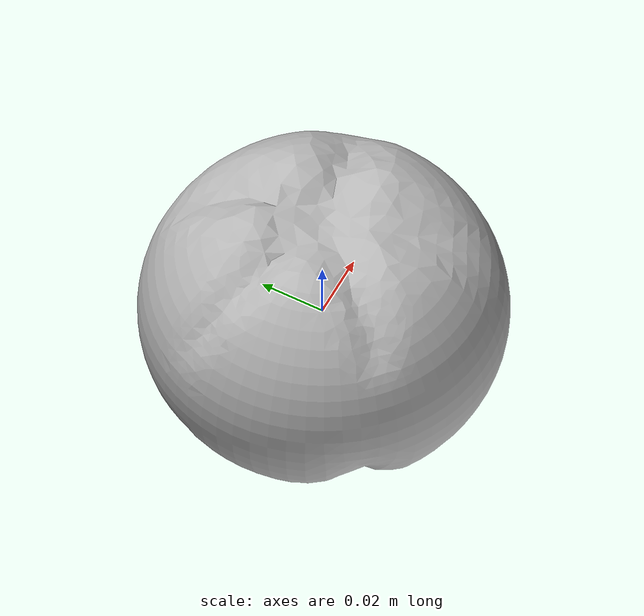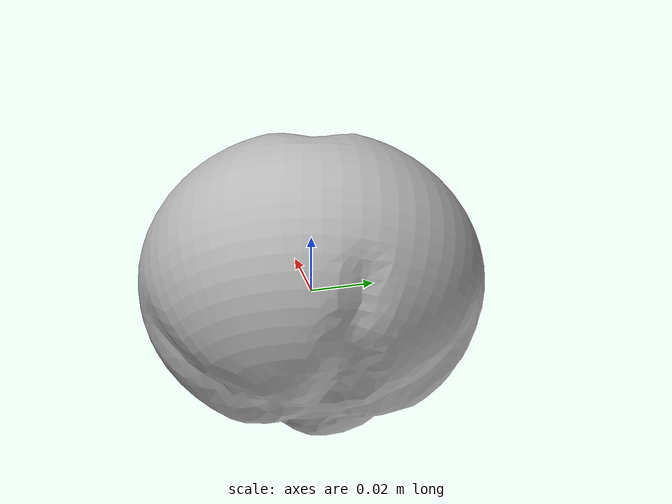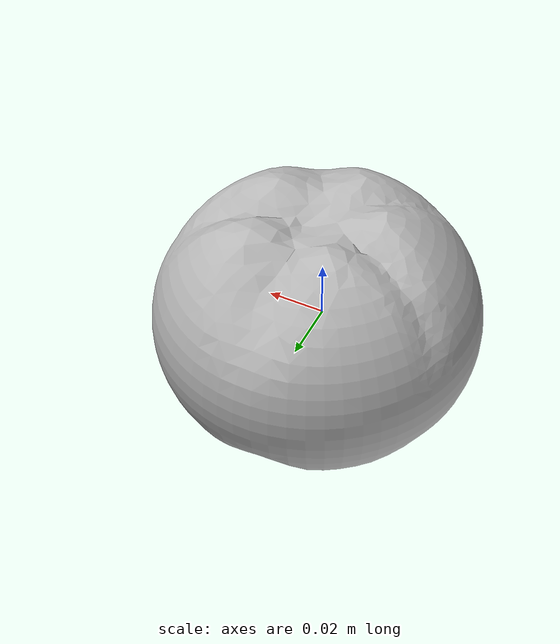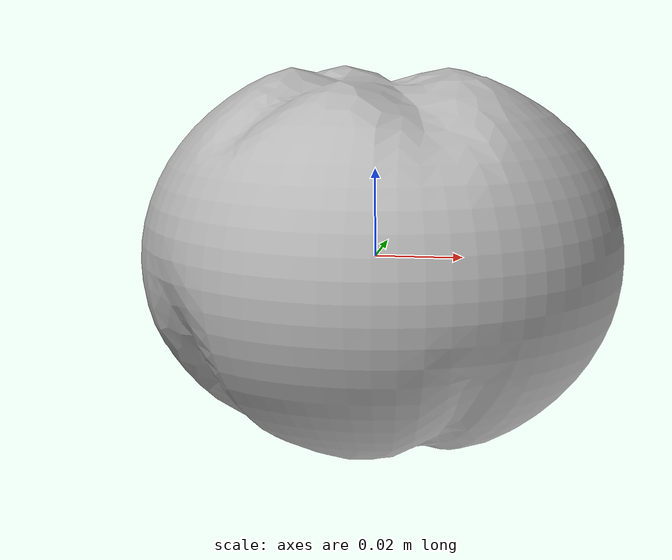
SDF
<?xml version="1.0"?>
<sdf version="1.6">
    <model name="tomato">
      <link name="tomato_link">
        <visual name="visual">
          <geometry>
            <mesh><uri>model://tomato/meshes/tomato.obj</uri></mesh>
          </geometry>
        </visual>
        <collision name="collision">
          <geometry>
            <mesh><uri>model://tomato/meshes/tomato.obj</uri></mesh>
          </geometry>
        </collision>
      </link>
    </model>
</sdf>
